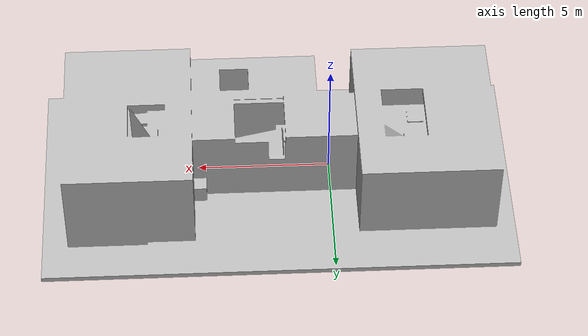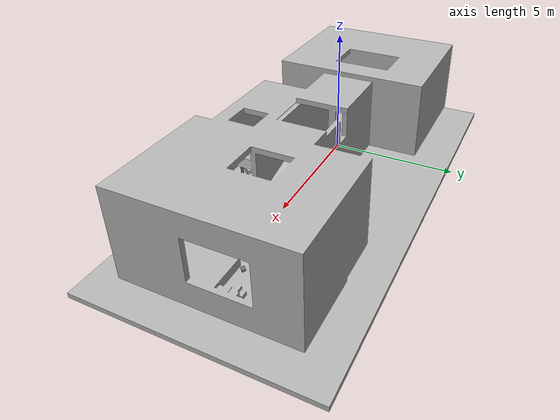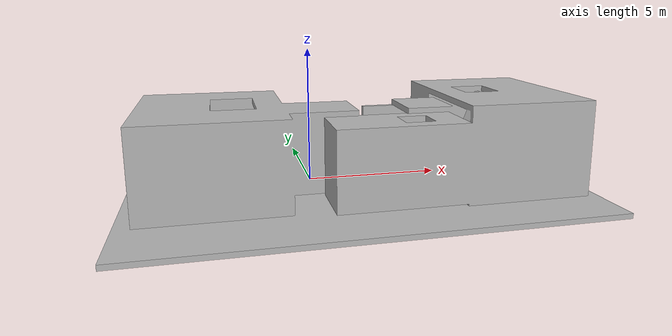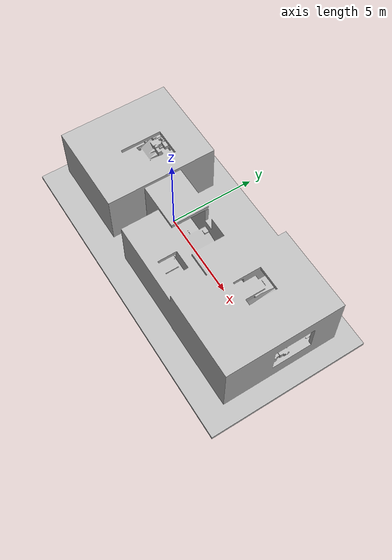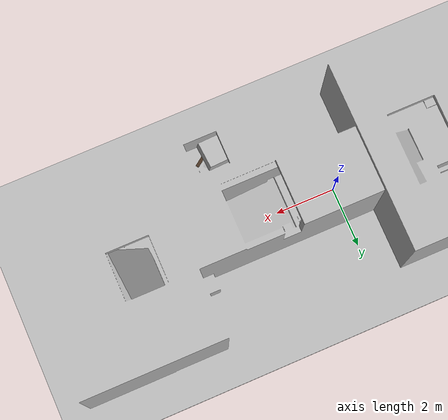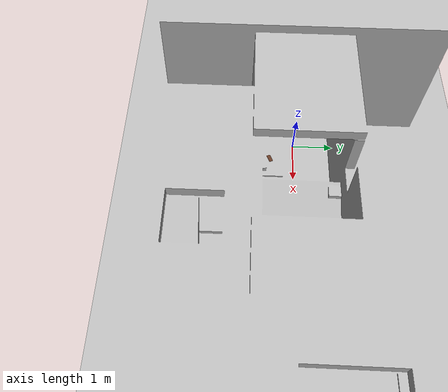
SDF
<?xml version="1.0"?>
<sdf version="1.9">
  <world name="pulso_disaster">
    <physics name="step_2_5ms" type="ignored">
      <max_step_size>0.0025</max_step_size>
      <real_time_factor>1.0</real_time_factor>
    </physics>

    <plugin filename="libignition-gazebo-physics-system.so"
            name="ignition::gazebo::systems::Physics"/>
    <plugin filename="libignition-gazebo-user-commands-system.so"
            name="ignition::gazebo::systems::UserCommands"/>
    <plugin filename="libignition-gazebo-scene-broadcaster-system.so"
            name="ignition::gazebo::systems::SceneBroadcaster"/>
    <plugin filename="libignition-gazebo-sensors-system.so"
            name="ignition::gazebo::systems::Sensors">
      <render_engine>ogre2</render_engine>
    </plugin>
    <plugin filename="libignition-gazebo-imu-system.so"
            name="ignition::gazebo::systems::Imu"/>
    <plugin filename="libignition-gazebo-contact-system.so"
            name="ignition::gazebo::systems::Contact"/>

    <scene>
      <ambient>0.025 0.03 0.04 1</ambient>
      <background>0.005 0.008 0.012 1</background>
      <shadows>true</shadows>
      <grid>false</grid>
      <origin_visual>false</origin_visual>
    </scene>

    <gui fullscreen="0">
      <plugin filename="MinimalScene" name="Pulso Disaster View">
        <ignition-gui>
          <title>Pulso Disaster View</title>
          <property type="bool" key="showTitleBar">false</property>
          <property type="string" key="state">docked</property>
        </ignition-gui>
        <engine>ogre2</engine>
        <scene>scene</scene>
        <!-- Operator-only inspection light. The phone sensors continue to use
             the much darker world scene and must still actuate the torch. -->
        <ambient_light>0.48 0.52 0.60</ambient_light>
        <background_color>0.005 0.008 0.012</background_color>
        <camera_pose>2 -11 8 0 0.63 1.5708</camera_pose>
        <camera_clip><near>0.03</near><far>120</far></camera_clip>
      </plugin>
      <plugin filename="GzSceneManager" name="Scene Manager">
        <ignition-gui>
          <property type="bool" key="resizable">false</property>
          <property type="double" key="width">5</property>
          <property type="double" key="height">5</property>
          <property type="string" key="state">floating</property>
          <property type="bool" key="showTitleBar">false</property>
        </ignition-gui>
      </plugin>
      <plugin filename="EntityContextMenuPlugin" name="Entity context menu">
        <ignition-gui>
          <property type="string" key="state">floating</property>
          <property type="double" key="width">5</property>
          <property type="double" key="height">5</property>
          <property type="bool" key="showTitleBar">false</property>
        </ignition-gui>
      </plugin>
      <plugin filename="InteractiveViewControl" name="Interactive view control">
        <ignition-gui>
          <property type="bool" key="resizable">false</property>
          <property type="double" key="width">5</property>
          <property type="double" key="height">5</property>
          <property type="string" key="state">floating</property>
          <property type="bool" key="showTitleBar">false</property>
        </ignition-gui>
      </plugin>
      <plugin filename="CameraTracking" name="Camera tracking">
        <ignition-gui>
          <property type="bool" key="resizable">false</property>
          <property type="double" key="width">5</property>
          <property type="double" key="height">5</property>
          <property type="string" key="state">floating</property>
          <property type="bool" key="showTitleBar">false</property>
        </ignition-gui>
      </plugin>
      <plugin filename="WorldControl" name="World control">
        <ignition-gui>
          <title>World control</title>
          <property type="bool" key="showTitleBar">false</property>
          <property type="bool" key="resizable">false</property>
          <property type="double" key="height">72</property>
          <property type="double" key="width">121</property>
          <property type="double" key="z">1</property>
          <property type="string" key="state">floating</property>
          <anchors target="Pulso Disaster View">
            <line own="left" target="left"/><line own="bottom" target="bottom"/>
          </anchors>
        </ignition-gui>
        <play_pause>true</play_pause><step>true</step><start_paused>false</start_paused>
      </plugin>
      <plugin filename="WorldStats" name="World stats">
        <ignition-gui>
          <title>World stats</title>
          <property type="bool" key="showTitleBar">false</property>
          <property type="bool" key="resizable">false</property>
          <property type="double" key="height">110</property>
          <property type="double" key="width">290</property>
          <property type="double" key="z">1</property>
          <property type="string" key="state">floating</property>
          <anchors target="Pulso Disaster View">
            <line own="right" target="right"/><line own="bottom" target="bottom"/>
          </anchors>
        </ignition-gui>
        <sim_time>true</sim_time><real_time>true</real_time>
        <real_time_factor>true</real_time_factor><iterations>true</iterations>
      </plugin>
    </gui>

    <light type="directional" name="dusty_moonlight">
      <cast_shadows>true</cast_shadows>
      <pose>0 0 10 0 0 0</pose>
      <diffuse>0.12 0.17 0.22 1</diffuse>
      <specular>0.03 0.04 0.05 1</specular>
      <direction>-0.35 0.2 -0.92</direction>
    </light>

    <include>
      <uri>model://pulso_disaster_scene</uri>
      <name>pulso_disaster_scene</name>
    </include>

    <!-- Collision-only companions for survivor and collapse visuals already
         baked into pulso_disaster_scene. Their poses use world XYZ. -->
    <include>
      <uri>model://pulso_settled_occupants</uri>
      <name>pulso_settled_occupants</name>
    </include>

    <include>
      <uri>model://pulso_dynamic_debris</uri>
      <name>pulso_dynamic_debris</name>
    </include>

    <model name="pulso_openbot">
      <pose>4.0 -0.52 0.085 0 0 3.14159</pose>
      <link name="base_link">
        <inertial>
          <mass>1.55</mass>
          <inertia><ixx>0.0048</ixx><iyy>0.0092</iyy><izz>0.0122</izz></inertia>
        </inertial>
        <collision name="base_collision">
          <pose>-0.0045 0.001 0.0025 0 0 0</pose>
          <geometry><box><size>0.249 0.152 0.0355</size></box></geometry>
        </collision>
        <collision name="phone_mount_left_collision">
          <pose>0.055 0.05 0.068 0 0 0</pose>
          <geometry><box><size>0.012 0.012 0.096</size></box></geometry>
        </collision>
        <collision name="phone_mount_right_collision">
          <pose>0.055 -0.05 0.068 0 0 0</pose>
          <geometry><box><size>0.012 0.012 0.096</size></box></geometry>
        </collision>
        <collision name="bumper_collision">
          <pose>0.1425 0 0.035 0 0 0</pose>
          <geometry><box><size>0.015 0.16 0.05</size></box></geometry>
        </collision>
        <visual name="openbot_body_bottom_visual">
          <pose>-0.014 -0.008 -0.01525 0 0 0</pose>
          <geometry>
            <mesh>
              <uri>model://pulso_openbot/meshes/body_bottom_visual_lod25.stl</uri>
              <scale>0.001 0.001 0.001</scale>
            </mesh>
          </geometry>
          <material><ambient>0.025 0.08 0.16 1</ambient><diffuse>0.04 0.19 0.38 1</diffuse><specular>0.15 0.2 0.3 1</specular></material>
        </visual>
        <visual name="openbot_body_top_visual">
          <pose>-0.014 -0.008 0.01425 0 0 0</pose>
          <geometry>
            <mesh>
              <uri>model://pulso_openbot/meshes/body_top_visual_lod25.stl</uri>
              <scale>0.001 0.001 0.001</scale>
            </mesh>
          </geometry>
          <material><ambient>0.035 0.11 0.22 1</ambient><diffuse>0.055 0.26 0.52 1</diffuse><specular>0.18 0.24 0.34 1</specular></material>
        </visual>
        <!-- Honest proxy brackets: they connect the measured S25 pose to the
             chassis without claiming that the official clamp is calibrated. -->
        <visual name="phone_mount_left_visual">
          <pose>0.055 0.05 0.068 0 0 0</pose>
          <geometry><box><size>0.012 0.012 0.096</size></box></geometry>
          <material><ambient>0.03 0.035 0.045 1</ambient><diffuse>0.08 0.09 0.12 1</diffuse></material>
        </visual>
        <visual name="phone_mount_right_visual">
          <pose>0.055 -0.05 0.068 0 0 0</pose>
          <geometry><box><size>0.012 0.012 0.096</size></box></geometry>
          <material><ambient>0.03 0.035 0.045 1</ambient><diffuse>0.08 0.09 0.12 1</diffuse></material>
        </visual>
        <sensor name="front_sonar_cone" type="gpu_lidar">
          <pose>0.14 0 0.045 0 0 0</pose>
          <topic>/pulso/sim/base/front_scan</topic>
          <update_rate>20</update_rate>
          <lidar>
            <scan>
              <horizontal>
                <samples>7</samples>
                <resolution>1</resolution>
                <min_angle>-0.14</min_angle>
                <max_angle>0.14</max_angle>
              </horizontal>
            </scan>
            <range>
              <min>0.035</min>
              <max>4.0</max>
              <resolution>0.01</resolution>
            </range>
            <noise><type>gaussian</type><mean>0</mean><stddev>0.006</stddev></noise>
          </lidar>
          <always_on>true</always_on>
        </sensor>
        <sensor name="front_bumper_contact" type="contact">
          <topic>/pulso/sim/base/bumper_contacts</topic>
          <update_rate>50</update_rate>
          <contact><collision>bumper_collision</collision></contact>
          <always_on>true</always_on>
        </sensor>
      </link>

      <link name="phone_sensor_link">
        <pose relative_to="base_link">0.055 0 0.155 0 0 0</pose>
        <!-- S25 Ultra + light case, mounted upright in landscape orientation. -->
        <inertial><mass>0.232</mass><inertia><ixx>0.000628</ixx><iyy>0.000117</iyy><izz>0.000514</izz></inertia></inertial>
        <collision name="phone_collision">
          <geometry><box><size>0.0082 0.1628 0.0776</size></box></geometry>
        </collision>
        <visual name="phone_visual">
          <geometry><box><size>0.0082 0.1628 0.0776</size></box></geometry>
          <material><ambient>0.04 0.05 0.07 1</ambient><diffuse>0.055 0.065 0.09 1</diffuse></material>
        </visual>
        <light name="phone_flashlight" type="spot">
          <pose>0.006 -0.054 0.023 0 0 0</pose>
          <!-- Fortress self-shadows a link-mounted light against its own phone body. -->
          <cast_shadows>false</cast_shadows>
          <visualize>false</visualize>
          <light_on>false</light_on>
          <intensity>0.5</intensity>
          <diffuse>1.0 0.91 0.72 1</diffuse>
          <specular>0.18 0.16 0.12 1</specular>
          <attenuation>
            <range>8.0</range>
            <constant>0.25</constant>
            <linear>0.02</linear>
            <quadratic>0.002</quadratic>
          </attenuation>
          <direction>1 0 0</direction>
          <spot><inner_angle>0.28</inner_angle><outer_angle>0.95</outer_angle><falloff>0.65</falloff></spot>
        </light>
        <sensor name="phone_rgb" type="camera">
          <pose>0.006 -0.054 0.023 0 0 0</pose>
          <topic>/pulso/sim/phone/rgb</topic>
          <update_rate>30</update_rate>
          <camera>
            <horizontal_fov>1.256637</horizontal_fov>
            <image><width>640</width><height>480</height><format>R8G8B8</format></image>
            <clip><near>0.08</near><far>12.0</far></clip>
          </camera>
          <always_on>true</always_on>
          <!-- Sensor debug frusta must never leak into the robot's RGB feed. -->
          <visualize>false</visualize>
        </sensor>
        <sensor name="phone_depth" type="depth_camera">
          <pose>0.006 -0.054 0.023 0 0 0</pose>
          <topic>/pulso/sim/phone/depth_clean</topic>
          <update_rate>15</update_rate>
          <camera>
            <horizontal_fov>1.256637</horizontal_fov>
            <image><width>640</width><height>480</height><format>R_FLOAT32</format></image>
            <clip><near>0.08</near><far>12.0</far></clip>
          </camera>
          <always_on>true</always_on>
        </sensor>
        <sensor name="phone_imu" type="imu">
          <topic>/pulso/sim/phone/imu</topic>
          <update_rate>100</update_rate>
          <always_on>true</always_on>
        </sensor>
      </link>
      <joint name="phone_mount_joint" type="fixed">
        <parent>base_link</parent><child>phone_sensor_link</child>
      </joint>

      <link name="front_left_wheel"><pose relative_to="base_link">0.105 0.092 0 1.570796 0 0</pose><inertial><mass>0.08</mass><inertia><ixx>0.00005</ixx><iyy>0.00005</iyy><izz>0.00008</izz></inertia></inertial><collision name="collision"><geometry><cylinder><radius>0.033</radius><length>0.026</length></cylinder></geometry><surface><friction><ode><mu>0.28</mu><mu2>1.0</mu2><fdir1>0 0 1</fdir1></ode></friction></surface></collision><visual name="visual"><geometry><cylinder><radius>0.033</radius><length>0.026</length></cylinder></geometry></visual></link>
      <link name="rear_left_wheel"><pose relative_to="base_link">-0.105 0.092 0 1.570796 0 0</pose><inertial><mass>0.08</mass><inertia><ixx>0.00005</ixx><iyy>0.00005</iyy><izz>0.00008</izz></inertia></inertial><collision name="collision"><geometry><cylinder><radius>0.033</radius><length>0.026</length></cylinder></geometry><surface><friction><ode><mu>0.28</mu><mu2>1.0</mu2><fdir1>0 0 1</fdir1></ode></friction></surface></collision><visual name="visual"><geometry><cylinder><radius>0.033</radius><length>0.026</length></cylinder></geometry></visual></link>
      <link name="front_right_wheel"><pose relative_to="base_link">0.105 -0.092 0 1.570796 0 0</pose><inertial><mass>0.08</mass><inertia><ixx>0.00005</ixx><iyy>0.00005</iyy><izz>0.00008</izz></inertia></inertial><collision name="collision"><geometry><cylinder><radius>0.033</radius><length>0.026</length></cylinder></geometry><surface><friction><ode><mu>0.28</mu><mu2>1.0</mu2><fdir1>0 0 1</fdir1></ode></friction></surface></collision><visual name="visual"><geometry><cylinder><radius>0.033</radius><length>0.026</length></cylinder></geometry></visual></link>
      <link name="rear_right_wheel"><pose relative_to="base_link">-0.105 -0.092 0 1.570796 0 0</pose><inertial><mass>0.08</mass><inertia><ixx>0.00005</ixx><iyy>0.00005</iyy><izz>0.00008</izz></inertia></inertial><collision name="collision"><geometry><cylinder><radius>0.033</radius><length>0.026</length></cylinder></geometry><surface><friction><ode><mu>0.28</mu><mu2>1.0</mu2><fdir1>0 0 1</fdir1></ode></friction></surface></collision><visual name="visual"><geometry><cylinder><radius>0.033</radius><length>0.026</length></cylinder></geometry></visual></link>

      <joint name="front_left_joint" type="revolute"><parent>base_link</parent><child>front_left_wheel</child><axis><xyz expressed_in="__model__">0 1 0</xyz></axis></joint>
      <joint name="rear_left_joint" type="revolute"><parent>base_link</parent><child>rear_left_wheel</child><axis><xyz expressed_in="__model__">0 1 0</xyz></axis></joint>
      <joint name="front_right_joint" type="revolute"><parent>base_link</parent><child>front_right_wheel</child><axis><xyz expressed_in="__model__">0 1 0</xyz></axis></joint>
      <joint name="rear_right_joint" type="revolute"><parent>base_link</parent><child>rear_right_wheel</child><axis><xyz expressed_in="__model__">0 1 0</xyz></axis></joint>

      <plugin filename="libignition-gazebo-diff-drive-system.so" name="ignition::gazebo::systems::DiffDrive">
        <left_joint>front_left_joint</left_joint><left_joint>rear_left_joint</left_joint>
        <right_joint>front_right_joint</right_joint><right_joint>rear_right_joint</right_joint>
        <wheel_separation>0.184</wheel_separation><wheel_radius>0.033</wheel_radius>
        <topic>/pulso/base/cmd_vel_safe</topic>
        <!-- DiffDrive integrates wheel motion; it is encoder odometry, not
             physical ground truth when the rover slips or is blocked. -->
        <odom_topic>/pulso/sim/wheel_encoder/odom</odom_topic>
        <tf_topic>/pulso/sim/wheel_encoder/tf</tf_topic>
        <frame_id>odom</frame_id><child_frame_id>base_link</child_frame_id>
        <odom_publish_frequency>30</odom_publish_frequency>
      </plugin>

      <!-- Private simulator truth.  The VIO emulator converts this absolute
           world pose into an ARCore-like session-local pose before exposing
           it to navigation. -->
      <plugin filename="libignition-gazebo-odometry-publisher-system.so"
              name="ignition::gazebo::systems::OdometryPublisher">
        <odom_frame>world</odom_frame>
        <robot_base_frame>base_link</robot_base_frame>
        <dimensions>2</dimensions>
        <odom_publish_frequency>30</odom_publish_frequency>
        <odom_topic>/pulso/sim/ground_truth/odom</odom_topic>
        <odom_covariance_topic>/pulso/sim/ground_truth/odom_with_covariance</odom_covariance_topic>
        <tf_topic>/pulso/sim/ground_truth/tf</tf_topic>
      </plugin>
    </model>
  </world>
</sdf>

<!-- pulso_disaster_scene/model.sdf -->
<sdf version="1.9">
  <model name="pulso_disaster_scene">
    <static>true</static>
    <link name="scene">
      <visual name="visual">
        <geometry><mesh><uri>meshes/pulso_disaster_visual.dae</uri></mesh></geometry>
      </visual>
      <collision name="architecture_collision">
        <geometry><mesh><uri>meshes/pulso_disaster_collision.obj</uri></mesh></geometry>
        <surface><friction><ode><mu>0.9</mu><mu2>0.75</mu2></ode></friction></surface>
      </collision>
    </link>
  </model>
</sdf>

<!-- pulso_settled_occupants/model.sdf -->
<sdf version="1.9">
  <model name='pulso_settled_occupants'>
    <static>true</static>
    <link name='settled_collision'>
      <collision name='pulso_ragdoll_a_chest'>
        <pose>-5.19334602 -0.22785629 0.23900937 1.63820418 0.52879692 -3.00856571</pose>
        <geometry><box><size>0.3600001 0.25000003 0.59609807</size></box></geometry>
        <surface><friction><ode><mu>0.78</mu><mu2>0.78</mu2></ode></friction></surface>
      </collision>
      <collision name='pulso_ragdoll_a_foot_l'>
        <pose>-4.64275169 -1.11481869 0.08000027 1.73338814 -1.02534941 -0.35982997</pose>
        <geometry><capsule><radius>0.068</radius><length>0.19052184</length></capsule></geometry>
        <surface><friction><ode><mu>0.78</mu><mu2>0.78</mu2></ode></friction></surface>
      </collision>
      <collision name='pulso_ragdoll_a_foot_r'>
        <pose>-5.21103764 -1.26258385 0.08000042 1.72110858 -0.97543969 -1.39360225</pose>
        <geometry><capsule><radius>0.068</radius><length>0.19052178</length></capsule></geometry>
        <surface><friction><ode><mu>0.78</mu><mu2>0.78</mu2></ode></friction></surface>
      </collision>
      <collision name='pulso_ragdoll_a_hand_l'>
        <pose>-4.76562214 -0.3878445 0.25027826 1.59892799 -0.59659625 0.95735289</pose>
        <geometry><capsule><radius>0.058</radius><length>0.17268074</length></capsule></geometry>
        <surface><friction><ode><mu>0.78</mu><mu2>0.78</mu2></ode></friction></surface>
      </collision>
      <collision name='pulso_ragdoll_a_hand_r'>
        <pose>-5.60778379 -0.52419221 0.06399959 1.66248376 -1.31501596 -0.39509679</pose>
        <geometry><capsule><radius>0.058</radius><length>0.17268071</length></capsule></geometry>
        <surface><friction><ode><mu>0.78</mu><mu2>0.78</mu2></ode></friction></surface>
      </collision>
      <collision name='pulso_ragdoll_a_head'>
        <pose>-5.29430389 0.18236685 0.16208239 2.22242479 -0.09177221 -2.661615</pose>
        <geometry><capsule><radius>0.11500004</radius><length>0.14267147</length></capsule></geometry>
        <surface><friction><ode><mu>0.78</mu><mu2>0.78</mu2></ode></friction></surface>
      </collision>
      <collision name='pulso_ragdoll_a_lowerarm_l'>
        <pose>-4.8791151 -0.23844609 0.25728703 1.62490031 -0.56388768 0.36692442</pose>
        <geometry><capsule><radius>0.062</radius><length>0.21878851</length></capsule></geometry>
        <surface><friction><ode><mu>0.78</mu><mu2>0.78</mu2></ode></friction></surface>
      </collision>
      <collision name='pulso_ragdoll_a_lowerarm_r'>
        <pose>-5.52645111 -0.34763873 0.07099996 1.72246556 -1.26347088 -0.67523822</pose>
        <geometry><capsule><radius>0.062</radius><length>0.21878852</length></capsule></geometry>
        <surface><friction><ode><mu>0.78</mu><mu2>0.78</mu2></ode></friction></surface>
      </collision>
      <collision name='pulso_ragdoll_a_neck'>
        <pose>-5.24194527 0.08367453 0.21444102 1.74334743 0.25966811 -2.67313533</pose>
        <geometry><capsule><radius>0.073</radius><length>0.11171675</length></capsule></geometry>
        <surface><friction><ode><mu>0.78</mu><mu2>0.78</mu2></ode></friction></surface>
      </collision>
      <collision name='pulso_ragdoll_a_pelvis'>
        <pose>-5.1588254 -0.49524993 0.24792266 0.52185977 -0.24046935 1.66988578</pose>
        <geometry><box><size>0.24000002 0.22000003 0.29299766</size></box></geometry>
        <surface><friction><ode><mu>0.78</mu><mu2>0.78</mu2></ode></friction></surface>
      </collision>
      <collision name='pulso_ragdoll_a_shin_l'>
        <pose>-4.72842836 -0.89520121 0.18833409 3.05063847 -1.02380762 -0.7668403</pose>
        <geometry><capsule><radius>0.084</radius><length>0.38741629</length></capsule></geometry>
        <surface><friction><ode><mu>0.78</mu><mu2>0.78</mu2></ode></friction></surface>
      </collision>
      <collision name='pulso_ragdoll_a_shin_r'>
        <pose>-5.15354013 -1.04603648 0.11900065 2.7096458 -1.39364586 -0.95866613</pose>
        <geometry><capsule><radius>0.084</radius><length>0.38741647</length></capsule></geometry>
        <surface><friction><ode><mu>0.78</mu><mu2>0.78</mu2></ode></friction></surface>
      </collision>
      <collision name='pulso_ragdoll_a_thigh_l'>
        <pose>-4.97192574 -0.63926268 0.30891961 -2.05889281 -1.3406082 -1.84859281</pose>
        <geometry><capsule><radius>0.105</radius><length>0.37853941</length></capsule></geometry>
        <surface><friction><ode><mu>0.78</mu><mu2>0.78</mu2></ode></friction></surface>
      </collision>
      <collision name='pulso_ragdoll_a_thigh_r'>
        <pose>-5.19766855 -0.66894984 0.15833697 -2.76157788 -1.52334429 -1.89301585</pose>
        <geometry><capsule><radius>0.105</radius><length>0.37853943</length></capsule></geometry>
        <surface><friction><ode><mu>0.78</mu><mu2>0.78</mu2></ode></friction></surface>
      </collision>
      <collision name='pulso_ragdoll_a_upperarm_l'>
        <pose>-5.01694822 -0.08661038 0.30773661 2.05542481 -0.59219104 0.79523625</pose>
        <geometry><capsule><radius>0.072</radius><length>0.2351564</length></capsule></geometry>
        <surface><friction><ode><mu>0.78</mu><mu2>0.78</mu2></ode></friction></surface>
      </collision>
      <collision name='pulso_ragdoll_a_upperarm_r'>
        <pose>-5.40173817 -0.16201295 0.10164849 2.73230869 -1.33071953 -1.80046461</pose>
        <geometry><capsule><radius>0.072</radius><length>0.23515651</length></capsule></geometry>
        <surface><friction><ode><mu>0.78</mu><mu2>0.78</mu2></ode></friction></surface>
      </collision>
      <collision name='pulso_ragdoll_b_chest'>
        <pose>9.07774448 -0.97496885 0.07768168 -0.89561021 -1.4098442 -1.99792668</pose>
        <geometry><box><size>0.36000004 0.25 0.62338054</size></box></geometry>
        <surface><friction><ode><mu>0.78</mu><mu2>0.78</mu2></ode></friction></surface>
      </collision>
      <collision name='pulso_ragdoll_b_foot_l'>
        <pose>8.59518051 -1.56374729 -0.07001532 1.66509323 0.63545182 1.11256075</pose>
        <geometry><capsule><radius>0.068</radius><length>0.21117738</length></capsule></geometry>
        <surface><friction><ode><mu>0.78</mu><mu2>0.78</mu2></ode></friction></surface>
      </collision>
      <collision name='pulso_ragdoll_b_foot_r'>
        <pose>8.09344006 -1.61066747 -0.06999988 1.72995786 1.07235077 0.24939829</pose>
        <geometry><capsule><radius>0.068</radius><length>0.21117723</length></capsule></geometry>
        <surface><friction><ode><mu>0.78</mu><mu2>0.78</mu2></ode></friction></surface>
      </collision>
      <collision name='pulso_ragdoll_b_hand_l'>
        <pose>9.00046539 -1.41512787 -0.08600077 1.60933977 1.01638005 -0.18699958</pose>
        <geometry><capsule><radius>0.058</radius><length>0.19719699</length></capsule></geometry>
        <surface><friction><ode><mu>0.78</mu><mu2>0.78</mu2></ode></friction></surface>
      </collision>
      <collision name='pulso_ragdoll_b_hand_r'>
        <pose>8.86818218 -1.04393852 -0.0561253 1.90049979 0.0545621 -0.73904547</pose>
        <geometry><capsule><radius>0.058</radius><length>0.19719702</length></capsule></geometry>
        <surface><friction><ode><mu>0.78</mu><mu2>0.78</mu2></ode></friction></surface>
      </collision>
      <collision name='pulso_ragdoll_b_head'>
        <pose>9.49411774 -0.9032414 0.01274195 -2.93741497 -0.94899686 0.14092838</pose>
        <geometry><capsule><radius>0.11500002</radius><length>0.15337603</length></capsule></geometry>
        <surface><friction><ode><mu>0.78</mu><mu2>0.78</mu2></ode></friction></surface>
      </collision>
      <collision name='pulso_ragdoll_b_lowerarm_l'>
        <pose>9.08849621 -1.20850599 -0.07900102 1.65752256 1.1069679 -0.46475138</pose>
        <geometry><capsule><radius>0.062</radius><length>0.25802355</length></capsule></geometry>
        <surface><friction><ode><mu>0.78</mu><mu2>0.78</mu2></ode></friction></surface>
      </collision>
      <collision name='pulso_ragdoll_b_lowerarm_r'>
        <pose>9.01158333 -0.91896635 0.05993802 2.31637599 0.27686913 -0.69861074</pose>
        <geometry><capsule><radius>0.062</radius><length>0.25802351</length></capsule></geometry>
        <surface><friction><ode><mu>0.78</mu><mu2>0.78</mu2></ode></friction></surface>
      </collision>
      <collision name='pulso_ragdoll_b_neck'>
        <pose>9.39045429 -0.91814214 0.0809453 -2.94005238 -1.0740884 -0.4254714</pose>
        <geometry><capsule><radius>0.07300001</radius><length>0.10473575</length></capsule></geometry>
        <surface><friction><ode><mu>0.78</mu><mu2>0.78</mu2></ode></friction></surface>
      </collision>
      <collision name='pulso_ragdoll_b_pelvis'>
        <pose>8.79980278 -1.03640914 0.04875247 -3.1415857 -0.56552955 1.00782105</pose>
        <geometry><box><size>0.24000002 0.22000003 0.31261283</size></box></geometry>
        <surface><friction><ode><mu>0.78</mu><mu2>0.78</mu2></ode></friction></surface>
      </collision>
      <collision name='pulso_ragdoll_b_shin_l'>
        <pose>8.4685564 -1.30228043 -0.04344309 1.70708133 0.87615153 0.27016347</pose>
        <geometry><capsule><radius>0.08400001</radius><length>0.4267493</length></capsule></geometry>
        <surface><friction><ode><mu>0.78</mu><mu2>0.78</mu2></ode></friction></surface>
      </collision>
      <collision name='pulso_ragdoll_b_shin_r'>
        <pose>8.26526165 -1.40016723 -0.0351152 -2.8342363 1.43820821 0.8335416</pose>
        <geometry><capsule><radius>0.08399999</radius><length>0.42674899</length></capsule></geometry>
        <surface><friction><ode><mu>0.78</mu><mu2>0.78</mu2></ode></friction></surface>
      </collision>
      <collision name='pulso_ragdoll_b_thigh_l'>
        <pose>8.63190556 -1.04042315 -0.03294307 1.3708221 1.37178944 -1.50958388</pose>
        <geometry><capsule><radius>0.105</radius><length>0.41042605</length></capsule></geometry>
        <surface><friction><ode><mu>0.78</mu><mu2>0.78</mu2></ode></friction></surface>
      </collision>
      <collision name='pulso_ragdoll_b_thigh_r'>
        <pose>8.60898876 -1.18945324 0.06514093 -3.00763338 1.20171666 0.72250558</pose>
        <geometry><capsule><radius>0.105</radius><length>0.41042587</length></capsule></geometry>
        <surface><friction><ode><mu>0.78</mu><mu2>0.78</mu2></ode></friction></surface>
      </collision>
      <collision name='pulso_ragdoll_b_upperarm_l'>
        <pose>9.20208645 -0.98298812 -0.07400194 1.57080416 1.35689841 -0.38803551</pose>
        <geometry><capsule><radius>0.07200001</radius><length>0.24869249</length></capsule></geometry>
        <surface><friction><ode><mu>0.78</mu><mu2>0.78</mu2></ode></friction></surface>
      </collision>
      <collision name='pulso_ragdoll_b_upperarm_r'>
        <pose>9.17092705 -0.9382686 0.20069917 2.44649621 0.9367572 -1.56524053</pose>
        <geometry><capsule><radius>0.072</radius><length>0.24869202</length></capsule></geometry>
        <surface><friction><ode><mu>0.78</mu><mu2>0.78</mu2></ode></friction></surface>
      </collision>
      <collision name='pulso_ragdoll_a_debris_beam'>
        <pose>-5.12647772 -2.14053822 0.10914927 -1.58555349 0.00598207 2.66120439</pose>
        <geometry><mesh><uri>meshes/pulso_ragdoll_a_debris_beam.obj</uri><scale>0.99999994 0.99999994 0.99999988</scale></mesh></geometry>
        <surface><friction><ode><mu>0.86</mu><mu2>0.86</mu2></ode></friction></surface>
      </collision>
      <collision name='pulso_ragdoll_a_debris_chunk_00'>
        <pose>-3.93318248 -0.53064638 0.98292798 -1.57266435 0.03335986 0.20907806</pose>
        <geometry><mesh><uri>meshes/pulso_ragdoll_a_debris_chunk_00.obj</uri><scale>1.0 1.00000012 1.00000012</scale></mesh></geometry>
        <surface><friction><ode><mu>0.86</mu><mu2>0.86</mu2></ode></friction></surface>
      </collision>
      <collision name='pulso_ragdoll_a_debris_chunk_01'>
        <pose>-4.8668189 -1.2417872 0.0705469 -3.12344742 -0.01596047 0.35235214</pose>
        <geometry><mesh><uri>meshes/pulso_ragdoll_a_debris_chunk_01.obj</uri><scale>0.99999988 1.0 1.0</scale></mesh></geometry>
        <surface><friction><ode><mu>0.86</mu><mu2>0.86</mu2></ode></friction></surface>
      </collision>
      <collision name='pulso_ragdoll_a_debris_chunk_02'>
        <pose>-5.09067678 -2.86176038 0.10597013 -0.34463956 -1.40616505 -1.16862863</pose>
        <geometry><mesh><uri>meshes/pulso_ragdoll_a_debris_chunk_02.obj</uri><scale>1.00000012 1.00000012 1.00000012</scale></mesh></geometry>
        <surface><friction><ode><mu>0.86</mu><mu2>0.86</mu2></ode></friction></surface>
      </collision>
      <collision name='pulso_ragdoll_a_debris_chunk_03'>
        <pose>-4.35897493 -0.36630169 0.89910913 -0.46249664 -1.52541255 -2.1891356</pose>
        <geometry><mesh><uri>meshes/pulso_ragdoll_a_debris_chunk_03.obj</uri><scale>1.00000012 1.00000024 1.00000012</scale></mesh></geometry>
        <surface><friction><ode><mu>0.86</mu><mu2>0.86</mu2></ode></friction></surface>
      </collision>
      <collision name='pulso_ragdoll_a_debris_chunk_04'>
        <pose>-4.92419291 0.31519261 0.28095663 -0.03577768 0.06371349 -3.12443018</pose>
        <geometry><mesh><uri>meshes/pulso_ragdoll_a_debris_chunk_04.obj</uri><scale>1.00000036 1.00000024 1.0</scale></mesh></geometry>
        <surface><friction><ode><mu>0.86</mu><mu2>0.86</mu2></ode></friction></surface>
      </collision>
      <collision name='pulso_ragdoll_a_debris_chunk_05'>
        <pose>-3.80368233 -1.72308731 0.08613362 -3.08972284 -0.0645267 2.49920296</pose>
        <geometry><mesh><uri>meshes/pulso_ragdoll_a_debris_chunk_05.obj</uri><scale>1.0 0.99999994 1.00000012</scale></mesh></geometry>
        <surface><friction><ode><mu>0.86</mu><mu2>0.86</mu2></ode></friction></surface>
      </collision>
      <collision name='pulso_ragdoll_a_debris_chunk_06'>
        <pose>-5.85581684 -2.73154974 0.10842124 0.44448797 1.55173276 -2.95296433</pose>
        <geometry><mesh><uri>meshes/pulso_ragdoll_a_debris_chunk_06.obj</uri><scale>1.00000012 1.00000012 1.00000012</scale></mesh></geometry>
        <surface><friction><ode><mu>0.86</mu><mu2>0.86</mu2></ode></friction></surface>
      </collision>
      <collision name='pulso_ragdoll_a_debris_chunk_07'>
        <pose>-1.54651976 2.80204368 0.09831271 -3.12303508 -0.10003988 -2.06283684</pose>
        <geometry><mesh><uri>meshes/pulso_ragdoll_a_debris_chunk_07.obj</uri><scale>1.00000012 1.0 1.00000012</scale></mesh></geometry>
        <surface><friction><ode><mu>0.86</mu><mu2>0.86</mu2></ode></friction></surface>
      </collision>
      <collision name='pulso_ragdoll_a_debris_chunk_08'>
        <pose>-5.51802015 -2.42557144 0.12608901 3.10882306 -0.01434785 1.01702956</pose>
        <geometry><mesh><uri>meshes/pulso_ragdoll_a_debris_chunk_08.obj</uri><scale>0.99999994 0.99999982 0.99999982</scale></mesh></geometry>
        <surface><friction><ode><mu>0.86</mu><mu2>0.86</mu2></ode></friction></surface>
      </collision>
      <collision name='pulso_ragdoll_a_debris_chunk_09'>
        <pose>-5.54455853 -2.8434329 0.16488057 -1.43708893 -1.49226022 -0.36636007</pose>
        <geometry><mesh><uri>meshes/pulso_ragdoll_a_debris_chunk_09.obj</uri><scale>1.00000012 1.00000012 1.00000012</scale></mesh></geometry>
        <surface><friction><ode><mu>0.86</mu><mu2>0.86</mu2></ode></friction></surface>
      </collision>
      <collision name='pulso_ragdoll_a_debris_primary_slab'>
        <pose>-4.9121418 -1.4988457 0.21563233 0.13936839 0.05400322 -0.13040835</pose>
        <geometry><mesh><uri>meshes/pulso_ragdoll_a_debris_primary_slab.obj</uri><scale>0.99999994 1.0 1.0</scale></mesh></geometry>
        <surface><friction><ode><mu>0.86</mu><mu2>0.86</mu2></ode></friction></surface>
      </collision>
      <collision name='pulso_ragdoll_a_debris_secondary_slab'>
        <pose>-4.94186068 -0.67524862 0.51476234 0.05262493 0.13511435 -1.07425264</pose>
        <geometry><mesh><uri>meshes/pulso_ragdoll_a_debris_secondary_slab.obj</uri><scale>0.99999988 0.99999982 1.0</scale></mesh></geometry>
        <surface><friction><ode><mu>0.86</mu><mu2>0.86</mu2></ode></friction></surface>
      </collision>
      <collision name='pulso_ragdoll_b_debris_beam'>
        <pose>6.68808031 -0.68040591 0.11574753 1.45245276 0.00664716 0.60451235</pose>
        <geometry><mesh><uri>meshes/pulso_ragdoll_b_debris_beam.obj</uri><scale>0.99999982 0.99999994 1.0</scale></mesh></geometry>
        <surface><friction><ode><mu>0.86</mu><mu2>0.86</mu2></ode></friction></surface>
      </collision>
      <collision name='pulso_ragdoll_b_debris_chunk_00'>
        <pose>7.71454382 -0.91106349 -0.05109078 3.10667885 0.10416499 -2.7082647</pose>
        <geometry><mesh><uri>meshes/pulso_ragdoll_b_debris_chunk_00.obj</uri><scale>1.00000048 0.99999994 1.00000048</scale></mesh></geometry>
        <surface><friction><ode><mu>0.86</mu><mu2>0.86</mu2></ode></friction></surface>
      </collision>
      <collision name='pulso_ragdoll_b_debris_chunk_01'>
        <pose>9.44299316 -1.77267098 -0.02797941 -0.01414896 -0.08300012 3.0037415</pose>
        <geometry><mesh><uri>meshes/pulso_ragdoll_b_debris_chunk_01.obj</uri><scale>1.00000036 1.00000048 0.99999994</scale></mesh></geometry>
        <surface><friction><ode><mu>0.86</mu><mu2>0.86</mu2></ode></friction></surface>
      </collision>
      <collision name='pulso_ragdoll_b_debris_chunk_02'>
        <pose>9.50258732 -1.1684171 0.03220881 0.36125102 -1.42901381 1.96221485</pose>
        <geometry><mesh><uri>meshes/pulso_ragdoll_b_debris_chunk_02.obj</uri><scale>0.99999994 0.99999994 1.0</scale></mesh></geometry>
        <surface><friction><ode><mu>0.86</mu><mu2>0.86</mu2></ode></friction></surface>
      </collision>
      <collision name='pulso_ragdoll_b_debris_chunk_03'>
        <pose>7.70324802 2.54307032 0.01511355 -1.61067058 -0.02156973 -1.43429765</pose>
        <geometry><mesh><uri>meshes/pulso_ragdoll_b_debris_chunk_03.obj</uri><scale>0.99999994 1.0 0.99999988</scale></mesh></geometry>
        <surface><friction><ode><mu>0.86</mu><mu2>0.86</mu2></ode></friction></surface>
      </collision>
      <collision name='pulso_ragdoll_b_debris_chunk_04'>
        <pose>8.14144325 -0.38848773 0.37452927 3.13556683 1.52968987 -0.0585382</pose>
        <geometry><mesh><uri>meshes/pulso_ragdoll_b_debris_chunk_04.obj</uri><scale>1.0 0.99999994 1.0</scale></mesh></geometry>
        <surface><friction><ode><mu>0.86</mu><mu2>0.86</mu2></ode></friction></surface>
      </collision>
      <collision name='pulso_ragdoll_b_debris_chunk_05'>
        <pose>5.07123327 -2.90801859 0.09748757 -1.17277068 1.25126106 -0.24034213</pose>
        <geometry><mesh><uri>meshes/pulso_ragdoll_b_debris_chunk_05.obj</uri><scale>1.00000012 0.99999994 1.00000012</scale></mesh></geometry>
        <surface><friction><ode><mu>0.86</mu><mu2>0.86</mu2></ode></friction></surface>
      </collision>
      <collision name='pulso_ragdoll_b_debris_chunk_06'>
        <pose>4.84215212 -2.248312 0.13346283 -3.07344077 -0.07373636 2.14737925</pose>
        <geometry><mesh><uri>meshes/pulso_ragdoll_b_debris_chunk_06.obj</uri><scale>0.99999988 0.99999988 1.0</scale></mesh></geometry>
        <surface><friction><ode><mu>0.86</mu><mu2>0.86</mu2></ode></friction></surface>
      </collision>
      <collision name='pulso_ragdoll_b_debris_chunk_07'>
        <pose>6.38780975 -1.52808142 0.10223466 2.86453084 -0.01283755 2.1419533</pose>
        <geometry><mesh><uri>meshes/pulso_ragdoll_b_debris_chunk_07.obj</uri><scale>1.0 1.0 0.99999994</scale></mesh></geometry>
        <surface><friction><ode><mu>0.86</mu><mu2>0.86</mu2></ode></friction></surface>
      </collision>
      <collision name='pulso_ragdoll_b_debris_chunk_08'>
        <pose>9.52315331 -2.10704827 -0.02978006 -0.07859923 -0.02767093 -2.99884679</pose>
        <geometry><mesh><uri>meshes/pulso_ragdoll_b_debris_chunk_08.obj</uri><scale>1.00000036 1.00000036 0.99999988</scale></mesh></geometry>
        <surface><friction><ode><mu>0.86</mu><mu2>0.86</mu2></ode></friction></surface>
      </collision>
      <collision name='pulso_ragdoll_b_debris_chunk_09'>
        <pose>9.04996681 2.59608579 -0.06225962 -0.0029564 0.05811602 1.65054323</pose>
        <geometry><mesh><uri>meshes/pulso_ragdoll_b_debris_chunk_09.obj</uri><scale>1.0 1.0 0.99999988</scale></mesh></geometry>
        <surface><friction><ode><mu>0.86</mu><mu2>0.86</mu2></ode></friction></surface>
      </collision>
      <collision name='pulso_ragdoll_b_debris_primary_slab'>
        <pose>8.36673069 -1.81892705 0.08572982 0.25506036 0.08910506 0.23784036</pose>
        <geometry><mesh><uri>meshes/pulso_ragdoll_b_debris_primary_slab.obj</uri><scale>0.99999994 1.0 1.0</scale></mesh></geometry>
        <surface><friction><ode><mu>0.86</mu><mu2>0.86</mu2></ode></friction></surface>
      </collision>
      <collision name='pulso_ragdoll_b_debris_secondary_slab'>
        <pose>7.11991787 -1.61362171 0.14668065 3.12857083 -0.00868193 -1.80326159</pose>
        <geometry><mesh><uri>meshes/pulso_ragdoll_b_debris_secondary_slab.obj</uri><scale>0.99999994 1.0 0.99999994</scale></mesh></geometry>
        <surface><friction><ode><mu>0.86</mu><mu2>0.86</mu2></ode></friction></surface>
      </collision>
    </link>
  </model>
</sdf>

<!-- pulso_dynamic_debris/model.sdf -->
<sdf version='1.8'>
  <model name='pulso_dynamic_debris'>
    <static>false</static>
    <self_collide>true</self_collide>
    <link name='deb_brick_01'>
      <pose>0.41999999 -0.57999998 0.0275 0 0 0</pose>
      <inertial>
        <mass>3.32210449</mass>
        <inertia>
          <ixx>0.00789385081</ixx><iyy>0.0130677401</iyy><izz>0.0192866966</izz>
          <ixy>0</ixy><ixz>0</ixz><iyz>0</iyz>
        </inertia>
      </inertial>
      <velocity_decay><linear>0.12</linear><angular>0.2</angular></velocity_decay>
      <collision name='collision'>
        <geometry><box><size>0.21018533 0.15965249 0.055</size></box></geometry>
        <surface>
          <friction><ode><mu>0.86</mu><mu2>0.78</mu2></ode></friction>
          <bounce><restitution_coefficient>0.015</restitution_coefficient><threshold>0.05</threshold></bounce>
        </surface>
      </collision>
      <visual name='visual'>
        <geometry>
          <mesh>
            <uri>model://pulso_dynamic_debris/meshes/vis_dyn_deb_brick_01.obj</uri>
            <scale>1 1 1</scale>
          </mesh>
        </geometry>
        <material><ambient>0.39 0.22 0.14 1</ambient><diffuse>0.39 0.22 0.14 1</diffuse></material>
      </visual>
    </link>
    <link name='deb_brick_02'>
      <pose>2.8499999 0.52999997 0.0275 0 0 0</pose>
      <inertial>
        <mass>3.8235815</mass>
        <inertia>
          <ixx>0.0143252478</ixx><iyy>0.0122982211</iyy><izz>0.0246957465</izz>
          <ixy>0</ixy><ixz>0</ixz><iyz>0</iyz>
        </inertia>
      </inertial>
      <velocity_decay><linear>0.12</linear><angular>0.2</angular></velocity_decay>
      <collision name='collision'>
        <geometry><box><size>0.18860532 0.20477702 0.055</size></box></geometry>
        <surface>
          <friction><ode><mu>0.86</mu><mu2>0.78</mu2></ode></friction>
          <bounce><restitution_coefficient>0.015</restitution_coefficient><threshold>0.05</threshold></bounce>
        </surface>
      </collision>
      <visual name='visual'>
        <geometry>
          <mesh>
            <uri>model://pulso_dynamic_debris/meshes/vis_dyn_deb_brick_02.obj</uri>
            <scale>1 1 1</scale>
          </mesh>
        </geometry>
        <material><ambient>0.39 0.22 0.14 1</ambient><diffuse>0.39 0.22 0.14 1</diffuse></material>
      </visual>
    </link>
    <link name='deb_brick_03'>
      <pose>2.29999995 -2 -0.0525 0 0 0</pose>
      <inertial>
        <mass>3.32442861</mass>
        <inertia>
          <ixx>0.0130773126</ixx><iyy>0.00790900822</iyy><izz>0.0193102548</izz>
          <ixy>0</ixy><ixz>0</ixz><iyz>0</iyz>
        </inertia>
      </inertial>
      <velocity_decay><linear>0.12</linear><angular>0.2</angular></velocity_decay>
      <collision name='collision'>
        <geometry><box><size>0.15976137 0.21018903 0.055</size></box></geometry>
        <surface>
          <friction><ode><mu>0.86</mu><mu2>0.78</mu2></ode></friction>
          <bounce><restitution_coefficient>0.015</restitution_coefficient><threshold>0.05</threshold></bounce>
        </surface>
      </collision>
      <visual name='visual'>
        <geometry>
          <mesh>
            <uri>model://pulso_dynamic_debris/meshes/vis_dyn_deb_brick_03.obj</uri>
            <scale>1 1 1</scale>
          </mesh>
        </geometry>
        <material><ambient>0.39 0.22 0.14 1</ambient><diffuse>0.39 0.22 0.14 1</diffuse></material>
      </visual>
    </link>
    <link name='deb_brick_04'>
      <pose>4.4000001 -2.61999989 -0.0525 0 0 0</pose>
      <inertial>
        <mass>2.33946875</mass>
        <inertia>
          <ixx>0.00327597475</ixx><iyy>0.00849092781</iyy><izz>0.0105874204</izz>
          <ixy>0</ixy><ixz>0</ixz><iyz>0</iyz>
        </inertia>
      </inertial>
      <velocity_decay><linear>0.12</linear><angular>0.2</angular></velocity_decay>
      <collision name='collision'>
        <geometry><box><size>0.20131594 0.11738265 0.055</size></box></geometry>
        <surface>
          <friction><ode><mu>0.86</mu><mu2>0.78</mu2></ode></friction>
          <bounce><restitution_coefficient>0.015</restitution_coefficient><threshold>0.05</threshold></bounce>
        </surface>
      </collision>
      <visual name='visual'>
        <geometry>
          <mesh>
            <uri>model://pulso_dynamic_debris/meshes/vis_dyn_deb_brick_04.obj</uri>
            <scale>1 1 1</scale>
          </mesh>
        </geometry>
        <material><ambient>0.39 0.22 0.14 1</ambient><diffuse>0.39 0.22 0.14 1</diffuse></material>
      </visual>
    </link>
    <link name='deb_chunk_01'>
      <pose>8.19999981 0.30000001 -0.095 0 0 0</pose>
      <inertial>
        <mass>10.7189449</mass>
        <inertia>
          <ixx>0.057033892</ixx><iyy>0.0595991044</iyy><izz>0.0858487345</izz>
          <ixy>0</ixy><ixz>0</ixz><iyz>0</iyz>
        </inertia>
      </inertial>
      <velocity_decay><linear>0.12</linear><angular>0.2</angular></velocity_decay>
      <collision name='collision'>
        <geometry><box><size>0.22246413 0.21591318 0.13126954</size></box></geometry>
        <surface>
          <friction><ode><mu>0.86</mu><mu2>0.78</mu2></ode></friction>
          <bounce><restitution_coefficient>0.015</restitution_coefficient><threshold>0.05</threshold></bounce>
        </surface>
      </collision>
      <visual name='visual'>
        <geometry>
          <mesh>
            <uri>model://pulso_dynamic_debris/meshes/vis_dyn_deb_chunk_01.obj</uri>
            <scale>1 1 1</scale>
          </mesh>
        </geometry>
        <material><ambient>0.42 0.43 0.45 1</ambient><diffuse>0.42 0.43 0.45 1</diffuse></material>
      </visual>
    </link>
    <link name='deb_plank_01'>
      <pose>3.39999986 -2.75 -0.066 0 0 0</pose>
      <inertial>
        <mass>8.87731464</mass>
        <inertia>
          <ixx>0.278073858</ixx><iyy>0.469790522</iyy><izz>0.746704411</izz>
          <ixy>0</ixy><ixz>0</ixz><iyz>0</iyz>
        </inertia>
      </inertial>
      <velocity_decay><linear>0.12</linear><angular>0.2</angular></velocity_decay>
      <collision name='collision'>
        <geometry><box><size>0.79640448 0.61245829 0.028</size></box></geometry>
        <surface>
          <friction><ode><mu>0.86</mu><mu2>0.78</mu2></ode></friction>
          <bounce><restitution_coefficient>0.015</restitution_coefficient><threshold>0.05</threshold></bounce>
        </surface>
      </collision>
      <visual name='visual'>
        <geometry>
          <mesh>
            <uri>model://pulso_dynamic_debris/meshes/vis_dyn_deb_plank_01.obj</uri>
            <scale>1 1 1</scale>
          </mesh>
        </geometry>
        <material><ambient>0.28 0.2 0.13 1</ambient><diffuse>0.28 0.2 0.13 1</diffuse></material>
      </visual>
    </link>
  </model>
</sdf>
